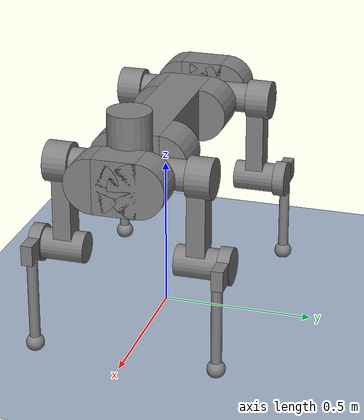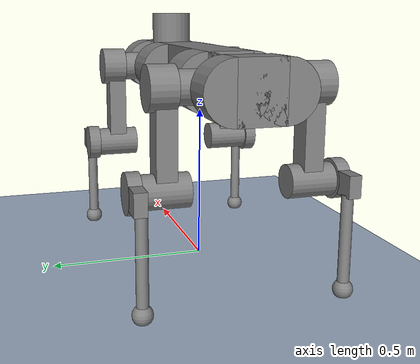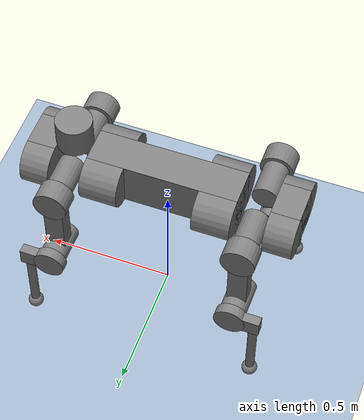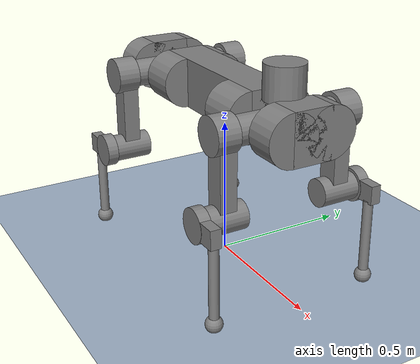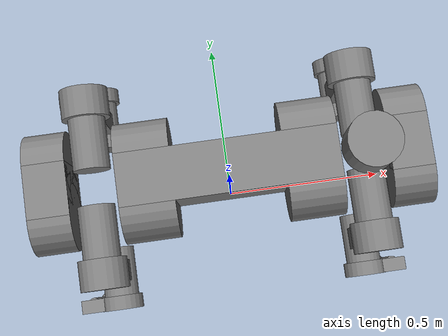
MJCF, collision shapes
<mujoco model="anymal_c flat terrain scene">
  <include file="anymal_c.xml"/>
  <statistic center="0 0 0.3" extent="1.2" meansize="0.06"/>

  <visual>
    <headlight diffuse="0.6 0.6 0.6" ambient="0.3 0.3 0.3" specular="0 0 0"/>
    <rgba haze="0.15 0.25 0.35 1"/>
    <global azimuth="120" elevation="-20"/>
    <map force="0.01"/>
    <scale forcewidth="0.3" contactwidth="0.5" contactheight="0.2"/>
    <quality shadowsize="8192"/>
  </visual>

  <asset>
    <texture type="skybox" builtin="gradient" rgb1="0.4314 0.5294 0.6431" rgb2="0 0 0" width="512" height="512"/>
    <texture type="2d" name="groundplane" builtin="checker" mark="edge" rgb1="0.4314 0.5294 0.6431" rgb2="0.8157 0.8549 0.9059"
      markrgb="0.8 0.8 0.8" width="300" height="300"/>
    <material name="groundplane" texture="groundplane" texuniform="true" texrepeat="1 1" reflectance="0.2"/>
  </asset>

  <worldbody>
      <light pos="0 0 2.0" dir="0 0 -1" directional="true"/>
      <geom name="floor" size="0 0 0.01" type="plane" material="groundplane" contype="1" conaffinity="0" priority="1"
        friction="0.6" condim="3"/>
  </worldbody>

  <keyframe>
    <key name="home" qpos="
    0 0 0.54
    1 0 0 0
    0 0.4 -0.8
    0 0.4 -0.8
    0 -0.4 0.8
    0 -0.4 0.8"
      ctrl="0 0.4 -0.8 0 0.4 -0.8 0 -0.4 0.8 0 -0.4 0.8"/>
  </keyframe>
</mujoco>

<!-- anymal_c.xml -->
<mujoco model="anymal_c">
  <compiler angle="radian" meshdir="assets" texturedir="assets" autolimits="true"/>

  <option timestep="0.005" integrator="Euler" iterations="60" cone="elliptic" impratio="100">
    <flag eulerdamp="disable"/>
  </option>

  <custom>
    <numeric data="30" name="max_contact_points"/>
    <numeric data="12" name="max_geom_pairs"/>
  </custom>

  <default>
    <material specular="0" shininess="0.25"/>
    <default class="anymal_c">
      <joint damping="1" frictionloss="0.1" armature="0.01"/>

      <default class="visual">
        <geom type="mesh" contype="0" conaffinity="0" group="2"/>
        <default class="visual_zflip">
          <geom quat="0 0 0 1"/>
        </default>
      </default>
      <default class="collision">
        <geom group="3" type="cylinder"/>
        <default class="foot">
          <geom type="sphere" size="0.03" pos="0 0 0.02325" priority="1" solimp="0.015 1 0.03" condim="6"
            friction="0.8 0.02 0.01"/>
        </default>
      </default>

      <default class="HAA">
        <joint axis="1 0 0" range="-0.72 0.72" frictionloss="0.3"/>
      </default>
      <default class="HFE">
        <joint range="-1.5 1.5" frictionloss="0.3"/>
      </default>
      <default class="KFE">
        <joint range="-2.5 -0.5" frictionloss="1.0"/>
      </default>
    </default>
  </default>

  <asset>
    <material name="black_plastic" rgba="0.007 0.007 0.007 1"/>
    <material name="green" rgba="0.052 0.178 0.033 1"/>
    <material name="red" rgba="0.178 0.006 0.005 1"/>
    <material name="yellow" rgba="0.178 0.119 0.006 1"/>
    <material name="lwl" rgba="0.8 0.8 0.8 1"/>
    <material name="base" texture="base"/>
    <material name="top_shell" texture="top_shell"/>
    <material name="bottom_shell" texture="bottom_shell"/>
    <material name="hip_l" texture="hip_l"/>
    <material name="thigh" texture="thigh"/>
    <material name="shank_l" texture="shank_l"/>
    <material name="foot" texture="foot"/>
    <material name="hip_r" texture="hip_r"/>
    <material name="shank" texture="shank_r"/>
    <material name="hatch" texture="hatch"/>
    <material name="remote" texture="remote"/>
    <material name="handle" texture="handle"/>
    <material name="face" texture="face"/>
    <material name="depth_camera" texture="depth_camera"/>
    <material name="wide_angle_camera" texture="wide_angle_camera"/>
    <material name="battery" texture="battery"/>
    <material name="lidar_cage" texture="lidar_cage"/>
    <material name="lidar" texture="lidar"/>
    <material name="drive" texture="drive"/>

    <texture type="2d" name="base" file="base.png"/>
    <texture type="2d" name="top_shell" file="top_shell.png"/>
    <texture type="2d" name="bottom_shell" file="bottom_shell.png"/>
    <texture type="2d" name="remote" file="remote.png"/>
    <texture type="2d" name="hatch" file="hatch.png"/>
    <texture type="2d" name="handle" file="handle.png"/>
    <texture type="2d" name="face" file="face.png"/>
    <texture type="2d" name="battery" file="battery.png"/>
    <texture type="2d" name="lidar_cage" file="lidar_cage.png"/>
    <texture type="2d" name="depth_camera" file="depth_camera.png"/>
    <texture type="2d" name="wide_angle_camera" file="wide_angle_camera.png"/>
    <texture type="2d" name="lidar" file="lidar.png"/>
    <texture type="2d" name="drive" file="drive.png"/>
    <texture type="2d" name="hip_l" file="hip_l.png"/>
    <texture type="2d" name="shank_l" file="shank_l.png"/>
    <texture type="2d" name="foot" file="foot.png"/>
    <texture type="2d" name="thigh" file="thigh.png"/>
    <texture type="2d" name="shank_r" file="shank_r.png"/>
    <texture type="2d" name="hip_r" file="hip_r.png"/>

    <mesh file="base_0.obj"/>
    <mesh file="base_1.obj"/>
    <mesh file="base_2.obj"/>
    <mesh file="base_3.obj"/>
    <mesh file="base_4.obj"/>
    <mesh file="base_5.obj"/>
    <mesh file="top_shell.obj"/>
    <mesh file="bottom_shell.obj"/>
    <mesh file="remote.obj"/>
    <mesh file="handle.obj"/>
    <mesh file="face.obj"/>
    <mesh file="wide_angle_camera.obj"/>
    <mesh file="depth_camera.obj"/>
    <mesh file="battery.obj"/>
    <mesh file="lidar_cage.obj"/>
    <mesh file="lidar.obj"/>
    <mesh file="drive.obj"/>
    <mesh file="hip_l.obj"/>
    <mesh file="thigh.obj"/>
    <mesh file="shank_l.obj"/>
    <mesh file="foot.obj"/>
    <mesh file="hip_r.obj"/>
    <mesh file="hatch.obj"/>
    <mesh file="shank_r.obj"/>
  </asset>

  <worldbody>
    <light name="spotlight" mode="targetbodycom" target="base" pos="0 -1 2" cutoff="30"/>
    <body name="base" pos="0 0 0.62" quat="0 0 0 1" childclass="anymal_c">
      <freejoint/>
      <camera name="track" pos="1.5 -2.0 0.8" xyaxes="0.866 0.500 0.000 -0.171 0.296 0.940" mode="trackcom"/>
      <camera name="top" pos="-1 0 1.5" xyaxes="0 -1 0 0.7 0 0.7" mode="trackcom"/>
      <camera name="side" pos="0 -3 1" xyaxes="1 0 0 0 1 2" mode="trackcom"/>
      <inertial mass="19.2035" pos="0.0025 0 0.0502071" quat="0.5 0.5 0.5 0.5" diaginertia="0.639559 0.624031 0.217374"/>
      <site name="imu" pos="0 0 0" group="5"/>
      <site name="head" pos="0.4 0 0" rgba="1 0 0 1" size="0.02" group="5"/>
      <geom mesh="base_0" material="green" class="visual"/>
      <geom mesh="base_1" material="yellow" class="visual"/>
      <geom mesh="base_2" material="red" class="visual"/>
      <geom mesh="base_3" material="black_plastic" class="visual"/>
      <geom mesh="base_4" material="lwl" class="visual"/>
      <geom mesh="base_5" material="base" class="visual"/>
      <geom name="base_collision" class="collision" size="0.29 0.07 0.09" type="box"/>
      <geom class="collision" size="0.09 0.0725" pos="0.2175 0.07 0" quat="1 0 1 0"/>
      <geom class="collision" size="0.09 0.0725" pos="-0.2175 0.07 0" quat="1 0 1 0"/>
      <geom class="collision" size="0.09 0.0725" pos="0.2175 -0.07 0" quat="1 0 1 0"/>
      <geom class="collision" size="0.09 0.0725" pos="-0.2175 -0.07 0" quat="1 0 1 0"/>
      <geom material="top_shell" mesh="top_shell" class="visual"/>
      <geom material="bottom_shell" mesh="bottom_shell" class="visual"/>
      <geom material="remote" mesh="remote" class="visual"/>
      <geom material="handle" mesh="handle" class="visual"/>
      <geom pos="0.4145 0 0" material="face" mesh="face" class="visual"/>
      <geom class="collision" size="0.055 0.07 0.09" pos="0.4695 0 0" type="box"/>
      <geom class="collision" size="0.09 0.055" pos="0.4695 0.07 0" quat="1 0 1 0"/>
      <geom class="collision" size="0.09 0.055" pos="0.4695 -0.07 0" quat="1 0 1 0"/>
      <geom pos="0.46165 0 -0.0292" quat="0.965926 0 0.258819 0" material="depth_camera" mesh="depth_camera"
        class="visual"/>
      <geom pos="0.513 0 0.01497" material="wide_angle_camera" mesh="wide_angle_camera" class="visual"/>
      <geom pos="-0.4145 0 0" material="face" mesh="face" class="visual_zflip"/>
      <geom class="collision" size="0.055 0.07 0.09" pos="-0.4695 0 0" quat="0 0 0 1" type="box"/>
      <geom class="collision" size="0.09 0.055" pos="-0.4695 -0.07 0" quat="0 -1 0 1"/>
      <geom class="collision" size="0.09 0.055" pos="-0.4695 0.07 0" quat="0 -1 0 1"/>
      <geom pos="-0.46165 0 -0.0292" quat="0 -0.258819 0 0.965926" material="depth_camera" mesh="depth_camera"
        class="visual"/>
      <geom pos="-0.513 0 0.01497" material="wide_angle_camera" mesh="wide_angle_camera" class="visual_zflip"/>
      <geom material="battery" mesh="battery" class="visual"/>
      <geom pos="0 0.07646 0.02905" quat="0.683013 -0.183013 0.183013 0.683013" material="depth_camera"
        mesh="depth_camera" class="visual"/>
      <geom pos="0 -0.07646 0.02905" quat="0.683013 0.183013 0.183013 -0.683013" material="depth_camera"
        mesh="depth_camera" class="visual"/>
      <geom pos="-0.364 0 0.0735" material="lidar_cage" mesh="lidar_cage" class="visual"/>
      <geom class="collision" size="0.07 0.06" pos="-0.364 0 0.1335"/>
      <geom pos="-0.364 0 0.1422" quat="1 0 0 -1" material="lidar" mesh="lidar" class="visual"/>
      <geom pos="0.2999 0.104 0" quat="0.258819 0.965926 0 0" material="drive" mesh="drive" class="visual"/>
      <geom pos="0.2999 -0.104 0" quat="0.258819 -0.965926 0 0" material="drive" mesh="drive" class="visual"/>
      <geom pos="-0.2999 0.104 0" quat="0 0 0.965926 -0.258819" material="drive" mesh="drive" class="visual"/>
      <geom pos="-0.2999 -0.104 0" quat="0 0 -0.965926 -0.258819" material="drive" mesh="drive" class="visual"/>
      <geom pos="0.116 0 0.073" material="hatch" mesh="hatch" class="visual"/>

      <!-- Left Front Leg (LF) -->
      <body name="LF_HIP" pos="0.2999 0.104 0" quat="0.258819 0.965926 0 0">
        <inertial mass="2.781" pos="0.0566606 -0.015294 -0.00829784" quat="-0.127978 0.709783 -0.135278 0.679359"
          diaginertia="0.00585729 0.00491868 0.00329081"/>
        <joint class="HAA" name="LF_HAA"/>
        <geom quat="0.258819 -0.965926 0 0" material="hip_l" mesh="hip_l" class="visual"/>
        <geom pos="0.0599 -0.0725816 -0.041905" quat="0.183013 -0.683013 0.683013 0.183013" material="drive"
          mesh="drive" class="visual"/>
        <geom name="LF_hip_collision" class="collision" size="0.05 0.07" pos="0.0599 -0.0119598 -0.006905"
          quat="-0.353553 -0.612372 0.612372 -0.353553"/>
        <body name="LF_THIGH" pos="0.0599 -0.0725816 -0.041905" quat="0.183013 -0.683013 0.683013 0.183013">
          <inertial mass="3.071" pos="0.0308147 4.64995e-05 -0.245696" quat="0.993166 -0.00515309 -0.0806592 0.0841972"
            diaginertia="0.03025 0.0298943 0.00418465"/>
          <joint class="HFE" name="LF_HFE"/>
          <geom quat="1 0 0 -1" material="thigh" mesh="thigh" class="visual"/>
          <geom name="LF_thigh_collision" class="collision" size="0.065 0.04" pos="0.04 0 0" quat="0.5 0.5 -0.5 -0.5"/>
          <geom class="collision" size="0.0375 0.03 0.141314" pos="0.03 0 -0.141314" quat="1 0 0 -1" type="box"/>
          <geom pos="0.1003 0 -0.285" material="drive" mesh="drive" class="visual"/>
          <geom class="collision" size="0.05 0.07" pos="0.0303 0 -0.285" quat="1 0 1 0"/>
          <body name="LF_SHANK" pos="0.1003 0 -0.285">
            <inertial mass="0.58842" pos="0.005462 -0.0612528 -0.0806598"
              quat="0.992934 -0.115904 -0.00105487 -0.0254421" diaginertia="0.0101637 0.00923838 0.00111927"/>
            <joint class="KFE" name="LF_KFE"/>
            <geom quat="1 0 0 -1" material="shank_l" mesh="shank_l" class="visual"/>
            <geom name="LF_shank_collision" class="collision" size="0.06 0.02" pos="0.02 0 0" quat="0.5 0.5 -0.5 -0.5"/>
            <geom class="collision" size="0.057499 0.03375 0.019" pos="0.02 -0.057499 0" quat="0.5 0.5 -0.5 -0.5"
              type="box"/>
            <geom pos="0.01305 -0.08795 -0.33797" quat="0.382683 0 0 -0.92388" material="foot" mesh="foot"
              class="visual"/>
            <geom class="collision" size="0.0175 0.141252" pos="0.01305 -0.08795 -0.168985" quat="1 0 0 -1"/>
            <geom name="LF_foot" class="foot" pos="0.01305 -0.08795 -0.31547" quat="1 0 0 -1"/>
            <site name="LF" pos="0.01305 -0.08795 -0.31547" type="sphere" size="0.03" group="5"/>
          </body>
        </body>
      </body>

      <!-- Right Front Leg (RF) -->
      <body name="RF_HIP" pos="0.2999 -0.104 0" quat="0.258819 -0.965926 0 0">
        <inertial mass="2.781" pos="0.0567633 0.015294 -0.00829784" quat="0.13524 0.679072 0.127985 0.710065"
          diaginertia="0.00585928 0.0049205 0.00329064"/>
        <joint class="HAA" name="RF_HAA"/>
        <geom quat="0.258819 0.965926 0 0" material="hip_r" mesh="hip_r" class="visual"/>
        <geom pos="0.0599 0.0725816 -0.041905" quat="0.183013 0.683013 0.683013 -0.183013" material="drive" mesh="drive"
          class="visual"/>
        <geom name="RF_hip_collision" class="collision" size="0.05 0.07" pos="0.0599 0.0119598 -0.006905"
          quat="-0.353553 0.612372 0.612372 0.353553"/>
        <body name="RF_THIGH" pos="0.0599 0.0725816 -0.041905" quat="0.183013 0.683013 0.683013 -0.183013">
          <inertial mass="3.071" pos="0.0308147 4.64995e-05 -0.245696" quat="0.992775 -0.00512735 -0.0806685 0.0886811"
            diaginertia="0.0302511 0.0298933 0.0041845"/>
          <joint class="HFE" name="RF_HFE"/>
          <geom quat="1 0 0 -1" material="thigh" mesh="thigh" class="visual"/>
          <geom name="RF_thigh_collision" class="collision" size="0.065 0.04" pos="0.04 0 0" quat="0.5 0.5 0.5 0.5"/>
          <geom class="collision" size="0.0375 0.03 0.141314" pos="0.03 0 -0.141314" quat="1 0 0 1" type="box"/>
          <geom pos="0.1003 0 -0.285" material="drive" mesh="drive" class="visual"/>
          <geom class="collision" size="0.05 0.07" pos="0.0303 0 -0.285" quat="1 0 1 0"/>
          <body name="RF_SHANK" pos="0.1003 0 -0.285">
            <inertial mass="0.58842" pos="0.005462 0.0612528 -0.0806598" quat="0.992934 0.115904 -0.00105487 0.0254421"
              diaginertia="0.0101637 0.00923838 0.00111927"/>
            <joint class="KFE" name="RF_KFE"/>
            <geom quat="1 0 0 1" material="shank" mesh="shank_r" class="visual"/>
            <geom name="RF_shank_collision" class="collision" size="0.06 0.02" pos="0.02 0 0" quat="0.5 0.5 0.5 0.5"/>
            <geom class="collision" size="0.057499 0.03375 0.019" pos="0.02 0.057499 0" quat="0.5 0.5 0.5 0.5"
              type="box"/>
            <geom pos="0.01305 0.08795 -0.33797" quat="0.382683 0 0 0.92388" material="foot" mesh="foot" class="visual"/>
            <geom class="collision" size="0.0175 0.141252" pos="0.01305 0.08795 -0.168985" quat="1 0 0 1"/>
            <geom name="RF_foot" class="foot" pos="0.01305 0.08795 -0.31547" quat="1 0 0 1"/>
            <site name="RF" pos="0.01305 0.08795 -0.31547" type="sphere" size="0.03" group="5"/>
          </body>
        </body>
      </body>

      <!-- Left Hind Leg (LH) -->
      <body name="LH_HIP" pos="-0.2999 0.104 0" quat="0 0 0.965926 -0.258819">
        <inertial mass="2.781" pos="0.0567633 0.015294 -0.00829784" quat="0.13524 0.679072 0.127985 0.710065"
          diaginertia="0.00585928 0.0049205 0.00329064"/>
        <joint class="HAA" name="LH_HAA"/>
        <geom quat="-0.258819 -0.965926 0 0" material="hip_r" mesh="hip_r" class="visual"/>
        <geom pos="0.0599 0.0725816 -0.041905" quat="0.183013 0.683013 0.683013 -0.183013" material="drive" mesh="drive"
          class="visual"/>
        <geom name="LH_hip_collision" class="collision" size="0.05 0.07" pos="0.0599 0.0119598 -0.006905"
          quat="-0.353553 0.612372 0.612372 0.353553"/>
        <body name="LH_THIGH" pos="0.0599 0.0725816 -0.041905" quat="0.183013 0.683013 0.683013 -0.183013">
          <inertial mass="3.071" pos="0.0308147 4.64995e-05 -0.245696" quat="0.992775 -0.00512735 -0.0806685 0.0886811"
            diaginertia="0.0302511 0.0298933 0.0041845"/>
          <joint class="HFE" name="LH_HFE"/>
          <geom quat="1 0 0 -1" material="thigh" mesh="thigh" class="visual"/>
          <geom name="LH_thigh_collision" class="collision" size="0.065 0.04" pos="0.04 0 0" quat="0.5 0.5 -0.5 -0.5"/>
          <geom class="collision" size="0.0375 0.03 0.141314" pos="0.03 0 -0.141314" quat="1 0 0 -1" type="box"/>
          <geom pos="0.1003 0 -0.285" material="drive" mesh="drive" class="visual"/>
          <geom class="collision" size="0.05 0.07" pos="0.0303 0 -0.285" quat="1 0 1 0"/>
          <body name="LH_SHANK" pos="0.1003 0 -0.285">
            <inertial mass="0.58842" pos="0.005462 0.0612528 -0.0806598" quat="0.992934 0.115904 -0.00105487 0.0254421"
              diaginertia="0.0101637 0.00923838 0.00111927"/>
            <joint class="KFE" name="LH_KFE"/>
            <geom quat="-1 0 0 -1" material="shank" mesh="shank_r" class="visual"/>
            <geom name="LH_shank_collision" class="collision" size="0.06 0.02" pos="0.02 0 0" quat="0.5 0.5 -0.5 -0.5"/>
            <geom class="collision" size="0.057499 0.03375 0.019" pos="0.02 0.057499 0" quat="0.5 0.5 -0.5 -0.5"
              type="box"/>
            <geom pos="0.01305 0.08795 -0.33797" quat="-0.382683 0 0 -0.92388" material="foot" mesh="foot"
              class="visual"/>
            <geom class="collision" size="0.0175 0.141252" pos="0.01305 0.08795 -0.168985" quat="1 0 0 -1"/>
            <geom name="LH_foot" class="foot" pos="0.01305 0.08795 -0.31547" quat="1 0 0 -1"/>
            <site name="LH" pos="0.01305 0.08795 -0.31547" type="sphere" size="0.03" group="5"/>
          </body>
        </body>
      </body>

      <!-- Right Hind Leg (RH) -->
      <body name="RH_HIP" pos="-0.2999 -0.104 0" quat="0 0 -0.965926 -0.258819">
        <inertial mass="2.781" pos="0.0566606 -0.015294 -0.00829784" quat="-0.127978 0.709783 -0.135278 0.679359"
          diaginertia="0.00585729 0.00491868 0.00329081"/>
        <joint class="HAA" name="RH_HAA"/>
        <geom quat="-0.258819 0.965926 0 0" material="hip_l" mesh="hip_l" class="visual"/>
        <geom pos="0.0599 -0.0725816 -0.041905" quat="-0.183013 0.683013 -0.683013 -0.183013" material="drive"
          mesh="drive" class="visual"/>
        <geom name="RH_hip_collision" class="collision" size="0.05 0.07" pos="0.0599 -0.0119598 -0.006905"
          quat="0.353553 0.612372 -0.612372 0.353553"/>
        <body name="RH_THIGH" pos="0.0599 -0.0725816 -0.041905" quat="-0.183013 0.683013 -0.683013 -0.183013">
          <inertial mass="3.071" pos="0.0308147 4.64995e-05 -0.245696" quat="0.993166 -0.00515309 -0.0806592 0.0841972"
            diaginertia="0.03025 0.0298943 0.00418465"/>
          <joint class="HFE" name="RH_HFE"/>
          <geom quat="1 0 0 -1" material="thigh" mesh="thigh" class="visual"/>
          <geom name="RH_thigh_collision" class="collision" size="0.065 0.04" pos="0.04 0 0" quat="0.5 0.5 0.5 0.5"/>
          <geom class="collision" size="0.0375 0.03 0.141314" pos="0.03 0 -0.141314" quat="1 0 0 1" type="box"/>
          <geom pos="0.1003 0 -0.285" material="drive" mesh="drive" class="visual"/>
          <geom class="collision" size="0.05 0.07" pos="0.0303 0 -0.285" quat="1 0 1 0"/>
          <body name="RH_SHANK" pos="0.1003 0 -0.285">
            <inertial mass="0.58842" pos="0.005462 -0.0612528 -0.0806598"
              quat="0.992934 -0.115904 -0.00105487 -0.0254421" diaginertia="0.0101637 0.00923838 0.00111927"/>
            <joint class="KFE" name="RH_KFE"/>
            <geom quat="1 0 0 -1" material="shank_l" mesh="shank_l" class="visual"/>
            <geom name="RH_shank_collision" class="collision" size="0.06 0.02" pos="0.02 0 0" quat="0.5 0.5 0.5 0.5"/>
            <geom class="collision" size="0.057499 0.03375 0.019" pos="0.02 -0.057499 0" quat="0.5 0.5 0.5 0.5"
              type="box"/>
            <geom pos="0.01305 -0.08795 -0.33797" quat="0.382683 0 0 -0.92388" material="foot" mesh="foot"
              class="visual"/>
            <geom class="collision" size="0.0175 0.141252" pos="0.01305 -0.08795 -0.168985" quat="1 0 0 1"/>
            <geom name="RH_foot" class="foot" pos="0.01305 -0.08795 -0.31547" quat="1 0 0 1"/>
            <site name="RH" pos="0.01305 -0.08795 -0.31547" type="sphere" size="0.03" group="5"/>
          </body>
        </body>
      </body>
    </body>
  </worldbody>

  <contact>
    <exclude body1="base" body2="LF_THIGH"/>
    <exclude body1="base" body2="RF_THIGH"/>
    <exclude body1="base" body2="LH_THIGH"/>
    <exclude body1="base" body2="RH_THIGH"/>
  </contact>

  <actuator>
    <!-- LF Leg -->
    <motor class="HAA" name="LF_HAA" joint="LF_HAA" ctrllimited="true" ctrlrange="-80 80"/>
    <motor class="HFE" name="LF_HFE" joint="LF_HFE" ctrllimited="true" ctrlrange="-80 80"/>
    <motor class="KFE" name="LF_KFE" joint="LF_KFE" ctrllimited="true" ctrlrange="-80 80"/>
    <!-- RF Leg -->
    <motor class="HAA" name="RF_HAA" joint="RF_HAA" ctrllimited="true" ctrlrange="-80 80"/>
    <motor class="HFE" name="RF_HFE" joint="RF_HFE" ctrllimited="true" ctrlrange="-80 80"/>
    <motor class="KFE" name="RF_KFE" joint="RF_KFE" ctrllimited="true" ctrlrange="-80 80"/>
    <!-- LH Leg -->
    <motor class="HAA" name="LH_HAA" joint="LH_HAA" ctrllimited="true" ctrlrange="-80 80"/>
    <motor class="HFE" name="LH_HFE" joint="LH_HFE" ctrllimited="true" ctrlrange="-80 80"/>
    <motor class="KFE" name="LH_KFE" joint="LH_KFE" ctrllimited="true" ctrlrange="-80 80"/>
    <!-- RH Leg -->
    <motor class="HAA" name="RH_HAA" joint="RH_HAA" ctrllimited="true" ctrlrange="-80 80"/>
    <motor class="HFE" name="RH_HFE" joint="RH_HFE" ctrllimited="true" ctrlrange="-80 80"/>
    <motor class="KFE" name="RH_KFE" joint="RH_KFE" ctrllimited="true" ctrlrange="-80 80"/>
  </actuator>

  <sensor>
    <gyro site="imu" name="gyro"/>
    <velocimeter site="imu" name="local_linvel"/>
    <framepos objtype="site" objname="imu" name="position"/>
    <framelinvel objtype="site" objname="imu" name="global_linvel"/>
    <frameangvel objtype="site" objname="imu" name="global_angvel"/>
    <framequat objtype="site" objname="imu" name="orientation"/>
    <framelinvel objtype="site" objname="LF" name="LF_global_linvel"/>
    <framelinvel objtype="site" objname="RF" name="RF_global_linvel"/>
    <framelinvel objtype="site" objname="LH" name="LH_global_linvel"/>
    <framelinvel objtype="site" objname="RH" name="RH_global_linvel"/>
    <framepos objtype="site" objname="LF" name="LF_pos" reftype="site" refname="imu"/>
    <framepos objtype="site" objname="RF" name="RF_pos" reftype="site" refname="imu"/>
    <framepos objtype="site" objname="LH" name="LH_pos" reftype="site" refname="imu"/>
    <framepos objtype="site" objname="RH" name="RH_pos" reftype="site" refname="imu"/>
    <framepos objtype="site" objname="head" name="head_pos"/>
  </sensor>
</mujoco>
